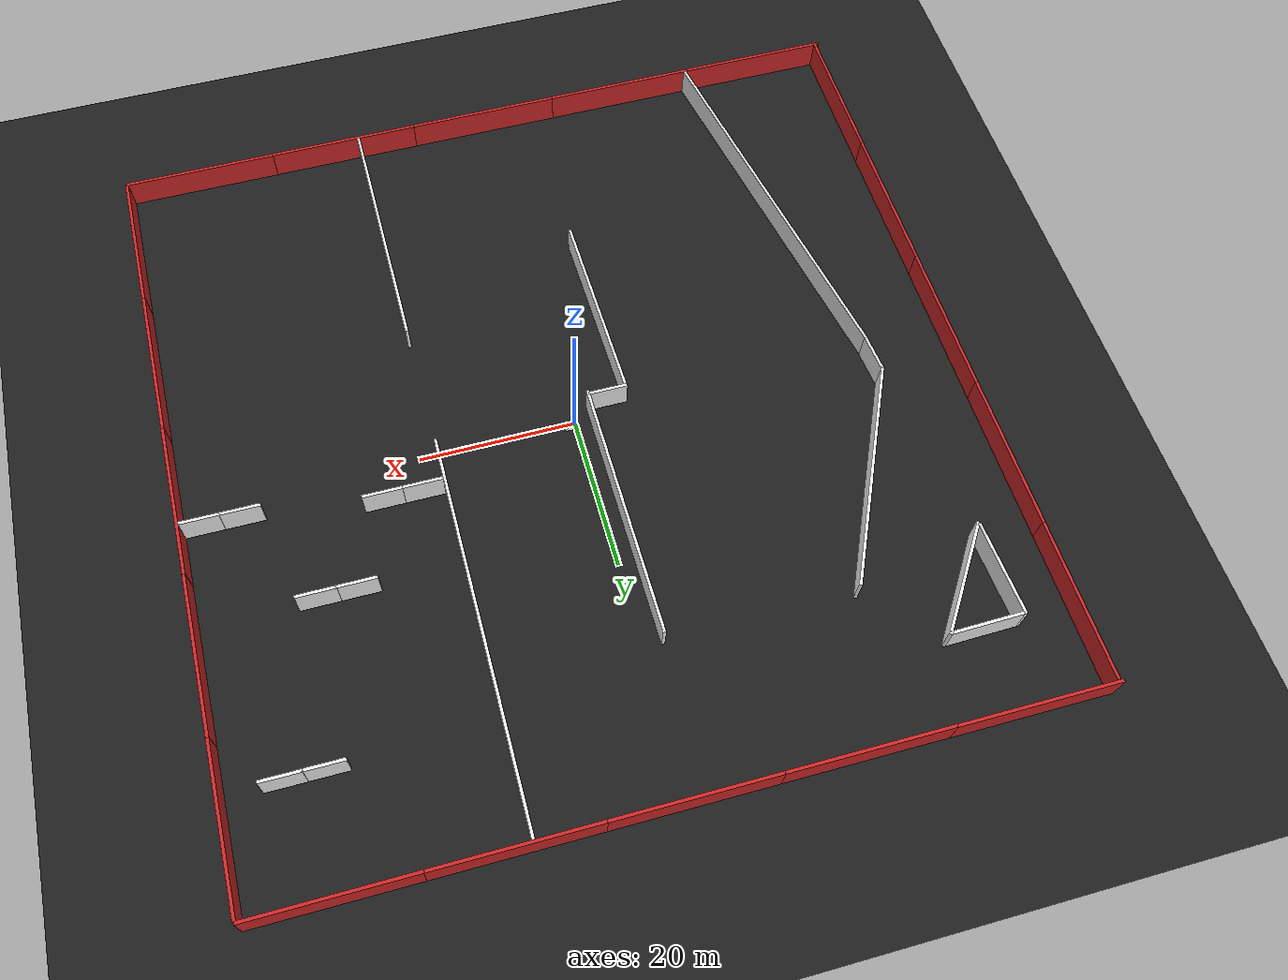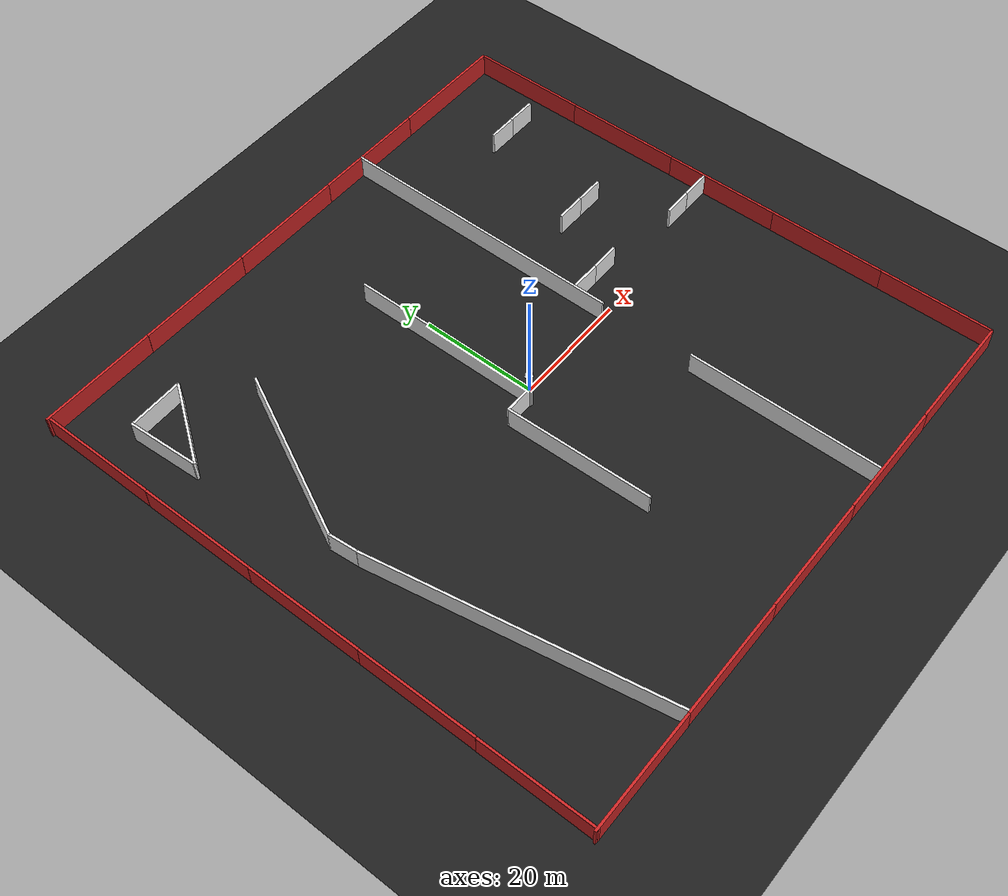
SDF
<sdf version="1.6">
 <world name="default">
  <light name="sun" type="directional">
   <pose>0 0 10 0 -0 0</pose>
   <diffuse>0.8 0.8 0.8 1</diffuse>
   <specular>0.1 0.1 0.1 1</specular>
   <attenuation>
    <range>1000</range>
    <constant>0.9</constant>
    <linear>0.01</linear>
    <quadratic>0.001</quadratic>
   </attenuation>
   <direction>-0.5 0.5 -1</direction>
  </light>
  <model name="ground_plane">
   <static>1</static>
   <link name="link">
    <collision name="collision">
     <geometry><plane><normal>0 0 1</normal><size>1000 1000</size></plane></geometry>
     <surface><friction><ode><mu>100</mu><mu2>50</mu2></ode></friction></surface>
    </collision>
    <visual name="visual">
     <cast_shadows>0</cast_shadows>
     <geometry><plane><normal>0 0 1</normal><size>100 100</size></plane></geometry>
     <material>
      <script><uri>file://media/materials/scripts/gazebo.material</uri><name>Gazebo/Black</name></script>
     </material>
    </visual>
   </link>
  </model>
  <gravity>0 0 -9.8</gravity>
  <magnetic_field>6e-06 2.3e-05 -4.2e-05</magnetic_field>
  <atmosphere type="adiabatic"/>
  <physics name="default_physics" default="0" type="ode">
   <max_step_size>0.001</max_step_size>
   <real_time_factor>1</real_time_factor>
   <real_time_update_rate>1000</real_time_update_rate>
  </physics>
  <scene><ambient>0.4 0.4 0.4 1</ambient><background>0.7 0.7 0.7 1</background><shadows>1</shadows></scene>
  <spherical_coordinates>
   <surface_model>EARTH_WGS84</surface_model>
   <latitude_deg>0</latitude_deg>
   <longitude_deg>0</longitude_deg>
   <elevation>0</elevation>
   <heading_deg>0</heading_deg>
  </spherical_coordinates>
  <model name="grey_wall">
   <static>1</static>
   <link name="link">
    <pose>0 0 1.4 0 -0 0</pose>
    <collision name="collision"><geometry><box><size>20 0.4 4</size></box></geometry></collision>
    <visual name="visual">
     <cast_shadows>0</cast_shadows>
     <geometry><box><size>20 0.4 4</size></box></geometry>
     <material>
      <script>
       <uri>model://grey_wall/materials/scripts</uri>
       <uri>model://grey_wall/materials/textures</uri>
       <name>Gazebo/Red</name>
      </script>
     </material>
    </visual>
   </link>
   <pose>39.8972 -49.6685 0.7 0 -0 0</pose>
  </model>
  <model name="grey_wall_clone">
   <static>1</static>
   <link name="link">
    <pose>0 0 1.4 0 -0 0</pose>
    <collision name="collision"><geometry><box><size>20 0.4 4</size></box></geometry></collision>
    <visual name="visual">
     <cast_shadows>0</cast_shadows>
     <geometry><box><size>20 0.4 4</size></box></geometry>
     <material>
      <script>
       <uri>model://grey_wall/materials/scripts</uri>
       <uri>model://grey_wall/materials/textures</uri>
       <name>Gazebo/Red</name>
      </script>
     </material>
    </visual>
   </link>
   <pose>20.0314 -49.6981 0.7 0 -0 0</pose>
  </model>
  <model name="grey_wall_clone_clone">
   <static>1</static>
   <link name="link">
    <pose>0 0 1.4 0 -0 0</pose>
    <collision name="collision"><geometry><box><size>20 0.4 4</size></box></geometry></collision>
    <visual name="visual">
     <cast_shadows>0</cast_shadows>
     <geometry><box><size>20 0.4 4</size></box></geometry>
     <material>
      <script>
       <uri>model://grey_wall/materials/scripts</uri>
       <uri>model://grey_wall/materials/textures</uri>
       <name>Gazebo/Red</name>
      </script>
     </material>
    </visual>
   </link>
   <pose>0.023572 -49.723 0.7 0 -0 0</pose>
  </model>
  <model name="grey_wall_clone_clone_0">
   <static>1</static>
   <link name="link">
    <pose>0 0 1.4 0 -0 0</pose>
    <collision name="collision"><geometry><box><size>20 0.4 4</size></box></geometry></collision>
    <visual name="visual">
     <cast_shadows>0</cast_shadows>
     <geometry><box><size>20 0.4 4</size></box></geometry>
     <material>
      <script>
       <uri>model://grey_wall/materials/scripts</uri>
       <uri>model://grey_wall/materials/textures</uri>
       <name>Gazebo/Red</name>
      </script>
     </material>
    </visual>
   </link>
   <pose>-19.977 -49.7441 0.7 0 -0 0</pose>
  </model>
  <model name="grey_wall_clone_clone_1">
   <static>1</static>
   <link name="link">
    <pose>0 0 1.4 0 -0 0</pose>
    <collision name="collision"><geometry><box><size>20 0.4 4</size></box></geometry></collision>
    <visual name="visual">
     <cast_shadows>0</cast_shadows>
     <geometry><box><size>20 0.4 4</size></box></geometry>
     <material>
      <script>
       <uri>model://grey_wall/materials/scripts</uri>
       <uri>model://grey_wall/materials/textures</uri>
       <name>Gazebo/Red</name>
      </script>
     </material>
    </visual>
   </link>
   <pose>-39.9743 -49.7801 0.7 0 -0 0</pose>
  </model>
  <model name="grey_wall_clone_clone_1_clone">
   <static>1</static>
   <link name="link">
    <pose>0 0 1.4 0 -0 0</pose>
    <collision name="collision"><geometry><box><size>20 0.4 4</size></box></geometry></collision>
    <visual name="visual">
     <cast_shadows>0</cast_shadows>
     <geometry><box><size>20 0.4 4</size></box></geometry>
     <material>
      <script>
       <uri>model://grey_wall/materials/scripts</uri>
       <uri>model://grey_wall/materials/textures</uri>
       <name>Gazebo/Red</name>
      </script>
     </material>
    </visual>
   </link>
   <pose>-40.2602 49.7183 0.7 0 -0 0</pose>
  </model>
  <model name="grey_wall_clone_clone_0_clone">
   <static>1</static>
   <link name="link">
    <pose>0 0 1.4 0 -0 0</pose>
    <collision name="collision"><geometry><box><size>20 0.4 4</size></box></geometry></collision>
    <visual name="visual">
     <cast_shadows>0</cast_shadows>
     <geometry><box><size>20 0.4 4</size></box></geometry>
     <material>
      <script>
       <uri>model://grey_wall/materials/scripts</uri>
       <uri>model://grey_wall/materials/textures</uri>
       <name>Gazebo/Red</name>
      </script>
     </material>
    </visual>
   </link>
   <pose>-20.266 49.6914 0.7 0 -0 0</pose>
  </model>
  <model name="grey_wall_clone_clone_clone">
   <static>1</static>
   <link name="link">
    <pose>0 0 1.4 0 -0 0</pose>
    <collision name="collision"><geometry><box><size>20 0.4 4</size></box></geometry></collision>
    <visual name="visual">
     <cast_shadows>0</cast_shadows>
     <geometry><box><size>20 0.4 4</size></box></geometry>
     <material>
      <script>
       <uri>model://grey_wall/materials/scripts</uri>
       <uri>model://grey_wall/materials/textures</uri>
       <name>Gazebo/Red</name>
      </script>
     </material>
    </visual>
   </link>
   <pose>-0.276509 49.6923 0.7 0 -0 0</pose>
  </model>
  <model name="grey_wall_clone_clone_2">
   <static>1</static>
   <link name="link">
    <pose>0 0 1.4 0 -0 0</pose>
    <collision name="collision"><geometry><box><size>20 0.4 4</size></box></geometry></collision>
    <visual name="visual">
     <cast_shadows>0</cast_shadows>
     <geometry><box><size>20 0.4 4</size></box></geometry>
     <material>
      <script>
       <uri>model://grey_wall/materials/scripts</uri>
       <uri>model://grey_wall/materials/textures</uri>
       <name>Gazebo/Red</name>
      </script>
     </material>
    </visual>
   </link>
   <pose>19.7279 49.6943 0.7 0 -0 0</pose>
  </model>
  <model name="grey_wall_clone_0">
   <static>1</static>
   <link name="link">
    <pose>0 0 1.4 0 -0 0</pose>
    <collision name="collision"><geometry><box><size>20 0.4 4</size></box></geometry></collision>
    <visual name="visual">
     <cast_shadows>0</cast_shadows>
     <geometry><box><size>20 0.4 4</size></box></geometry>
     <material>
      <script>
       <uri>model://grey_wall/materials/scripts</uri>
       <uri>model://grey_wall/materials/textures</uri>
       <name>Gazebo/Red</name>
      </script>
     </material>
    </visual>
   </link>
   <pose>39.6209 49.6898 0.7 0 -0 0</pose>
  </model>
  <model name="grey_wall_clone_0_clone">
   <static>1</static>
   <link name="link">
    <pose>0 0 1.4 0 -0 0</pose>
    <collision name="collision"><geometry><box><size>20 0.4 4</size></box></geometry></collision>
    <visual name="visual">
     <cast_shadows>0</cast_shadows>
     <geometry><box><size>20 0.4 4</size></box></geometry>
     <material>
      <script>
       <uri>model://grey_wall/materials/scripts</uri>
       <uri>model://grey_wall/materials/textures</uri>
       <name>Gazebo/Red</name>
      </script>
     </material>
    </visual>
   </link>
   <pose>49.6182 39.5429 0.7 0 -0 1.57482</pose>
  </model>
  <model name="grey_wall_clone_0_clone_clone">
   <static>1</static>
   <link name="link">
    <pose>0 0 1.4 0 -0 0</pose>
    <collision name="collision"><geometry><box><size>20 0.4 4</size></box></geometry></collision>
    <visual name="visual">
     <cast_shadows>0</cast_shadows>
     <geometry><box><size>20 0.4 4</size></box></geometry>
     <material>
      <script>
       <uri>model://grey_wall/materials/scripts</uri>
       <uri>model://grey_wall/materials/textures</uri>
       <name>Gazebo/Red</name>
      </script>
     </material>
    </visual>
   </link>
   <pose>49.6762 19.6308 0.7 0 -0 1.57482</pose>
  </model>
  <model name="grey_wall_clone_0_clone_clone_0">
   <static>1</static>
   <link name="link">
    <pose>0 0 1.4 0 -0 0</pose>
    <collision name="collision"><geometry><box><size>20 0.4 4</size></box></geometry></collision>
    <visual name="visual">
     <cast_shadows>0</cast_shadows>
     <geometry><box><size>20 0.4 4</size></box></geometry>
     <material>
      <script>
       <uri>model://grey_wall/materials/scripts</uri>
       <uri>model://grey_wall/materials/textures</uri>
       <name>Gazebo/Red</name>
      </script>
     </material>
    </visual>
   </link>
   <pose>49.727 -0.354519 0.7 0 -0 1.57482</pose>
  </model>
  <model name="grey_wall_clone_0_clone_clone_1">
   <static>1</static>
   <link name="link">
    <pose>0 0 1.4 0 -0 0</pose>
    <collision name="collision"><geometry><box><size>20 0.4 4</size></box></geometry></collision>
    <visual name="visual">
     <cast_shadows>0</cast_shadows>
     <geometry><box><size>20 0.4 4</size></box></geometry>
     <material>
      <script>
       <uri>model://grey_wall/materials/scripts</uri>
       <uri>model://grey_wall/materials/textures</uri>
       <name>Gazebo/Red</name>
      </script>
     </material>
    </visual>
   </link>
   <pose>49.7933 -20.3785 0.7 0 -0 1.57482</pose>
  </model>
  <model name="grey_wall_clone_0_clone_clone_2">
   <static>1</static>
   <link name="link">
    <pose>0 0 1.4 0 -0 0</pose>
    <collision name="collision"><geometry><box><size>19.4 0.4 4</size></box></geometry></collision>
    <visual name="visual">
     <cast_shadows>0</cast_shadows>
     <geometry><box><size>19.4 0.4 4</size></box></geometry>
     <material>
      <script>
       <uri>model://grey_wall/materials/scripts</uri>
       <uri>model://grey_wall/materials/textures</uri>
       <name>Gazebo/Red</name>
      </script>
     </material>
    </visual>
   </link>
   <pose>49.8768 -39.9777 0.7 0 -0 1.57482</pose>
  </model>
  <model name="grey_wall_clone_0_clone_clone_2_clone">
   <static>1</static>
   <link name="link">
    <pose>0 0 1.4 0 -0 0</pose>
    <collision name="collision"><geometry><box><size>19.4 0.4 4</size></box></geometry></collision>
    <visual name="visual">
     <cast_shadows>0</cast_shadows>
     <geometry><box><size>19.4 0.4 4</size></box></geometry>
     <material>
      <script>
       <uri>model://grey_wall/materials/scripts</uri>
       <uri>model://grey_wall/materials/textures</uri>
       <name>Gazebo/Red</name>
      </script>
     </material>
    </visual>
   </link>
   <pose>-49.472 -40.3053 0.7 0 -0 1.57482</pose>
  </model>
  <model name="grey_wall_clone_0_clone_clone_3">
   <static>1</static>
   <link name="link">
    <pose>0 0 1.4 0 -0 0</pose>
    <collision name="collision"><geometry><box><size>20 0.4 4</size></box></geometry></collision>
    <visual name="visual">
     <cast_shadows>0</cast_shadows>
     <geometry><box><size>20 0.4 4</size></box></geometry>
     <material>
      <script>
       <uri>model://grey_wall/materials/scripts</uri>
       <uri>model://grey_wall/materials/textures</uri>
       <name>Gazebo/Red</name>
      </script>
     </material>
    </visual>
   </link>
   <pose>-49.5264 -20.576 0.7 0 -0 1.57482</pose>
  </model>
  <model name="grey_wall_clone_0_clone_clone_4">
   <static>1</static>
   <link name="link">
    <pose>0 0 1.4 0 -0 0</pose>
    <collision name="collision"><geometry><box><size>20 0.4 4</size></box></geometry></collision>
    <visual name="visual">
     <cast_shadows>0</cast_shadows>
     <geometry><box><size>20 0.4 4</size></box></geometry>
     <material>
      <script>
       <uri>model://grey_wall/materials/scripts</uri>
       <uri>model://grey_wall/materials/textures</uri>
       <name>Gazebo/Red</name>
      </script>
     </material>
    </visual>
   </link>
   <pose>-49.5869 -0.554317 0.7 0 -0 1.57482</pose>
  </model>
  <model name="grey_wall_clone_0_clone_clone_5">
   <static>1</static>
   <link name="link">
    <pose>0 0 1.4 0 -0 0</pose>
    <collision name="collision"><geometry><box><size>20 0.4 4</size></box></geometry></collision>
    <visual name="visual">
     <cast_shadows>0</cast_shadows>
     <geometry><box><size>20 0.4 4</size></box></geometry>
     <material>
      <script>
       <uri>model://grey_wall/materials/scripts</uri>
       <uri>model://grey_wall/materials/textures</uri>
       <name>Gazebo/Red</name>
      </script>
     </material>
    </visual>
   </link>
   <pose>-49.6522 19.4313 0.7 0 -0 1.57482</pose>
  </model>
  <model name="grey_wall_clone_0_clone_clone_6">
   <static>1</static>
   <link name="link">
    <pose>0 0 1.4 0 -0 0</pose>
    <collision name="collision"><geometry><box><size>20 0.4 4</size></box></geometry></collision>
    <visual name="visual">
     <cast_shadows>0</cast_shadows>
     <geometry><box><size>20 0.4 4</size></box></geometry>
     <material>
      <script>
       <uri>model://grey_wall/materials/scripts</uri>
       <uri>model://grey_wall/materials/textures</uri>
       <name>Gazebo/Red</name>
      </script>
     </material>
    </visual>
   </link>
   <pose>-49.7102 39.4577 0.7 0 -0 1.57482</pose>
  </model>
  <model name="grey_wall_0">
   <static>1</static>
   <link name="link">
    <pose>0 0 1.4 0 -0 0</pose>
    <collision name="collision"><geometry><box><size>50 0.4 4</size></box></geometry></collision>
    <visual name="visual">
     <cast_shadows>0</cast_shadows>
     <geometry><box><size>50 0.4 4</size></box></geometry>
     <material>
      <script>
       <uri>model://grey_wall/materials/scripts</uri>
       <uri>model://grey_wall/materials/textures</uri>
       <name>Gazebo/White</name>
      </script>
     </material>
    </visual>
   </link>
   <pose>-34.1056 -24.9645 0.7 0 -0 1.75069</pose>
  </model>
  <model name="grey_wall_1">
   <static>1</static>
   <link name="link">
    <pose>0 0 1.4 0 -0 0</pose>
    <collision name="collision"><geometry><box><size>5 0.4 4</size></box></geometry></collision>
    <visual name="visual">
     <cast_shadows>0</cast_shadows>
     <geometry><box><size>5 0.4 4</size></box></geometry>
     <material>
      <script>
       <uri>model://grey_wall/materials/scripts</uri>
       <uri>model://grey_wall/materials/textures</uri>
       <name>Gazebo/White</name>
      </script>
     </material>
    </visual>
   </link>
   <pose>-38.7738 2.08756 0.7 0 0 -1.48449</pose>
  </model>
  <model name="grey_wall_2_clone">
   <static>1</static>
   <link name="link">
    <pose>0 0 1.4 0 -0 0</pose>
    <collision name="collision"><geometry><box><size>30 0.4 4</size></box></geometry></collision>
    <visual name="visual">
     <cast_shadows>0</cast_shadows>
     <geometry><box><size>30 0.4 4</size></box></geometry>
     <material>
      <script>
       <uri>model://grey_wall/materials/scripts</uri>
       <uri>model://grey_wall/materials/textures</uri>
       <name>Gazebo/White</name>
      </script>
     </material>
    </visual>
   </link>
   <pose>-32.4649 17.8517 0.7 0 0 -2.02397</pose>
  </model>
  <model name="grey_wall_2">
   <static>1</static>
   <link name="link">
    <pose>0 0 1.4 0 -0 0</pose>
    <collision name="collision"><geometry><box><size>15 0.4 4</size></box></geometry></collision>
    <visual name="visual">
     <cast_shadows>0</cast_shadows>
     <geometry><box><size>15 0.4 4</size></box></geometry>
     <material>
      <script>
       <uri>model://grey_wall/materials/scripts</uri>
       <uri>model://grey_wall/materials/textures</uri>
       <name>Gazebo/White</name>
      </script>
     </material>
    </visual>
   </link>
   <pose>-37.948 33.5051 0.7 0 0 -2.18263</pose>
  </model>
  <model name="grey_wall_1_clone_clone">
   <static>1</static>
   <link name="link">
    <pose>0 0 1.4 0 -0 0</pose>
    <collision name="collision"><geometry><box><size>9 0.4 4</size></box></geometry></collision>
    <visual name="visual">
     <cast_shadows>0</cast_shadows>
     <geometry><box><size>9 0.4 4</size></box></geometry>
     <material>
      <script>
       <uri>model://grey_wall/materials/scripts</uri>
       <uri>model://grey_wall/materials/textures</uri>
       <name>Gazebo/White</name>
      </script>
     </material>
    </visual>
   </link>
   <pose>-38.2883 39.4588 0.7 0 -0 0.015026</pose>
  </model>
  <model name="grey_wall_1_clone">
   <static>1</static>
   <link name="link">
    <pose>0 0 1.4 0 -0 0</pose>
    <collision name="collision"><geometry><box><size>12 0.4 4</size></box></geometry></collision>
    <visual name="visual">
     <cast_shadows>0</cast_shadows>
     <geometry><box><size>12 0.4 4</size></box></geometry>
     <material>
      <script>
       <uri>model://grey_wall/materials/scripts</uri>
       <uri>model://grey_wall/materials/textures</uri>
       <name>Gazebo/White</name>
      </script>
     </material>
    </visual>
   </link>
   <pose>-42.632 33.5878 0.7 0 0 -1.51262</pose>
  </model>
  <model name="grey_wall_2_clone_clone">
   <static>1</static>
   <link name="link">
    <pose>0 0 1.4 0 -0 0</pose>
    <collision name="collision"><geometry><box><size>33 0.4 4</size></box></geometry></collision>
    <visual name="visual">
     <cast_shadows>0</cast_shadows>
     <geometry><box><size>33 0.4 4</size></box></geometry>
     <material>
      <script>
       <uri>model://grey_wall/materials/scripts</uri>
       <uri>model://grey_wall/materials/textures</uri>
       <name>Gazebo/White</name>
      </script>
     </material>
    </visual>
   </link>
   <pose>-2.2386 14.4813 0.7 0 0 -1.56757</pose>
  </model>
  <model name="grey_wall_0_clone_clone">
   <static>1</static>
   <link name="link">
    <pose>0 0 1.4 0 -0 0</pose>
    <collision name="collision"><geometry><box><size>50 0.4 4</size></box></geometry></collision>
    <visual name="visual">
     <cast_shadows>0</cast_shadows>
     <geometry><box><size>50 0.4 4</size></box></geometry>
     <material>
      <script>
       <uri>model://grey_wall/materials/scripts</uri>
       <uri>model://grey_wall/materials/textures</uri>
       <name>Gazebo/White</name>
      </script>
     </material>
    </visual>
   </link>
   <pose>17.7252 24.7373 0.7 0 -0 1.56745</pose>
  </model>
  <model name="grey_wall_2_clone_clone_clone">
   <static>1</static>
   <link name="link">
    <pose>0 0 1.4 0 -0 0</pose>
    <collision name="collision"><geometry><box><size>33 0.4 4</size></box></geometry></collision>
    <visual name="visual">
     <cast_shadows>0</cast_shadows>
     <geometry><box><size>33 0.4 4</size></box></geometry>
     <material>
      <script>
       <uri>model://grey_wall/materials/scripts</uri>
       <uri>model://grey_wall/materials/textures</uri>
       <name>Gazebo/White</name>
      </script>
     </material>
    </visual>
   </link>
   <pose>17.8529 -33.037 0.7 0 0 -1.56861</pose>
  </model>
  <model name="grey_wall_2_clone_clone_clone_0">
   <static>1</static>
   <link name="link">
    <pose>0 0 1.4 0 -0 0</pose>
    <collision name="collision"><geometry><box><size>25 0.4 4</size></box></geometry></collision>
    <visual name="visual">
     <cast_shadows>0</cast_shadows>
     <geometry><box><size>25 0.4 4</size></box></geometry>
     <material>
      <script>
       <uri>model://grey_wall/materials/scripts</uri>
       <uri>model://grey_wall/materials/textures</uri>
       <name>Gazebo/White</name>
      </script>
     </material>
    </visual>
   </link>
   <pose>-6.74039 -14.1727 0.7 0 0 -1.54821</pose>
  </model>
  <model name="grey_wall_1_clone_1">
   <static>1</static>
   <link name="link">
    <pose>0 0 1.4 0 -0 0</pose>
    <collision name="collision"><geometry><box><size>5 0.4 4</size></box></geometry></collision>
    <visual name="visual">
     <cast_shadows>0</cast_shadows>
     <geometry><box><size>5 0.4 4</size></box></geometry>
     <material>
      <script>
       <uri>model://grey_wall/materials/scripts</uri>
       <uri>model://grey_wall/materials/textures</uri>
       <name>Gazebo/White</name>
      </script>
     </material>
    </visual>
   </link>
   <pose>42.179 3.01857 0.7 0 0 -0.00371</pose>
  </model>
  <model name="grey_wall_1_clone_1_clone">
   <static>1</static>
   <link name="link">
    <pose>0 0 1.4 0 -0 0</pose>
    <collision name="collision"><geometry><box><size>5 0.4 4</size></box></geometry></collision>
    <visual name="visual">
     <cast_shadows>0</cast_shadows>
     <geometry><box><size>5 0.4 4</size></box></geometry>
     <material>
      <script>
       <uri>model://grey_wall/materials/scripts</uri>
       <uri>model://grey_wall/materials/textures</uri>
       <name>Gazebo/White</name>
      </script>
     </material>
    </visual>
   </link>
   <pose>47.041 2.9894 0.7 0 0 -0.00371</pose>
  </model>
  <model name="grey_wall_1_clone_1_clone_0">
   <static>1</static>
   <link name="link">
    <pose>0 0 1.4 0 -0 0</pose>
    <collision name="collision"><geometry><box><size>5 0.4 4</size></box></geometry></collision>
    <visual name="visual">
     <cast_shadows>0</cast_shadows>
     <geometry><box><size>5 0.4 4</size></box></geometry>
     <material>
      <script>
       <uri>model://grey_wall/materials/scripts</uri>
       <uri>model://grey_wall/materials/textures</uri>
       <name>Gazebo/White</name>
      </script>
     </material>
    </visual>
   </link>
   <pose>20.3546 5.18242 0.7 0 0 -0.00371</pose>
  </model>
  <model name="grey_wall_1_clone_1_clone_1">
   <static>1</static>
   <link name="link">
    <pose>0 0 1.4 0 -0 0</pose>
    <collision name="collision"><geometry><box><size>5 0.4 4</size></box></geometry></collision>
    <visual name="visual">
     <cast_shadows>0</cast_shadows>
     <geometry><box><size>5 0.4 4</size></box></geometry>
     <material>
      <script>
       <uri>model://grey_wall/materials/scripts</uri>
       <uri>model://grey_wall/materials/textures</uri>
       <name>Gazebo/White</name>
      </script>
     </material>
    </visual>
   </link>
   <pose>25.3469 5.17491 0.7 0 0 -0.00371</pose>
  </model>
  <model name="grey_wall_1_clone_1_clone_2">
   <static>1</static>
   <link name="link">
    <pose>0 0 1.4 0 -0 0</pose>
    <collision name="collision"><geometry><box><size>5 0.4 4</size></box></geometry></collision>
    <visual name="visual">
     <cast_shadows>0</cast_shadows>
     <geometry><box><size>5 0.4 4</size></box></geometry>
     <material>
      <script>
       <uri>model://grey_wall/materials/scripts</uri>
       <uri>model://grey_wall/materials/textures</uri>
       <name>Gazebo/White</name>
      </script>
     </material>
    </visual>
   </link>
   <pose>30.401 15.8083 0.7 0 0 -0.00371</pose>
  </model>
  <model name="grey_wall_1_clone_1_clone_3">
   <static>1</static>
   <link name="link">
    <pose>0 0 1.4 0 -0 0</pose>
    <collision name="collision"><geometry><box><size>5 0.4 4</size></box></geometry></collision>
    <visual name="visual">
     <cast_shadows>0</cast_shadows>
     <geometry><box><size>5 0.4 4</size></box></geometry>
     <material>
      <script>
       <uri>model://grey_wall/materials/scripts</uri>
       <uri>model://grey_wall/materials/textures</uri>
       <name>Gazebo/White</name>
      </script>
     </material>
    </visual>
   </link>
   <pose>35.2535 15.7966 0.7 0 0 -0.00371</pose>
  </model>
  <model name="grey_wall_1_clone_1_clone_4">
   <static>1</static>
   <link name="link">
    <pose>0 0 1.4 0 -0 0</pose>
    <collision name="collision"><geometry><box><size>5 0.4 4</size></box></geometry></collision>
    <visual name="visual">
     <cast_shadows>0</cast_shadows>
     <geometry><box><size>5 0.4 4</size></box></geometry>
     <material>
      <script>
       <uri>model://grey_wall/materials/scripts</uri>
       <uri>model://grey_wall/materials/textures</uri>
       <name>Gazebo/White</name>
      </script>
     </material>
    </visual>
   </link>
   <pose>37.8082 35.9046 0.7 0 0 -0.00371</pose>
  </model>
  <model name="grey_wall_1_clone_1_clone_5">
   <static>1</static>
   <link name="link">
    <pose>0 0 1.4 0 -0 0</pose>
    <collision name="collision"><geometry><box><size>5 0.4 4</size></box></geometry></collision>
    <visual name="visual">
     <cast_shadows>0</cast_shadows>
     <geometry><box><size>5 0.4 4</size></box></geometry>
     <material>
      <script>
       <uri>model://grey_wall/materials/scripts</uri>
       <uri>model://grey_wall/materials/textures</uri>
       <name>Gazebo/White</name>
      </script>
     </material>
    </visual>
   </link>
   <pose>42.6574 35.9047 0.7 0 0 -0.00371</pose>
  </model>
  <model name="grey_wall_1_clone_1_clone_1_clone">
   <static>1</static>
   <link name="link">
    <pose>0 0 1.4 0 -0 0</pose>
    <collision name="collision"><geometry><box><size>5 0.4 4</size></box></geometry></collision>
    <visual name="visual">
     <cast_shadows>0</cast_shadows>
     <geometry><box><size>5 0.4 4</size></box></geometry>
     <material>
      <script>
       <uri>model://grey_wall/materials/scripts</uri>
       <uri>model://grey_wall/materials/textures</uri>
       <name>Gazebo/White</name>
      </script>
     </material>
    </visual>
   </link>
   <pose>-4.71302 -1.6028 0.7 0 0 -0.00371</pose>
  </model>
  <model name="goal">
   <pose>1.0 1.0 1.569 0 0 0</pose>
   <static>0</static>
   <link name="link">
    <collision name="collision">
     <geometry><mesh><uri>package://goal/meshes/base_link.STL</uri><scale>4 4 4</scale></mesh></geometry>
    </collision>
    <visual name="visual">
     <geometry><mesh><uri>package://goal/meshes/base_link.STL</uri><scale>4 4 4</scale></mesh></geometry>
    </visual>
   </link>
  </model>
 </world>
</sdf>
